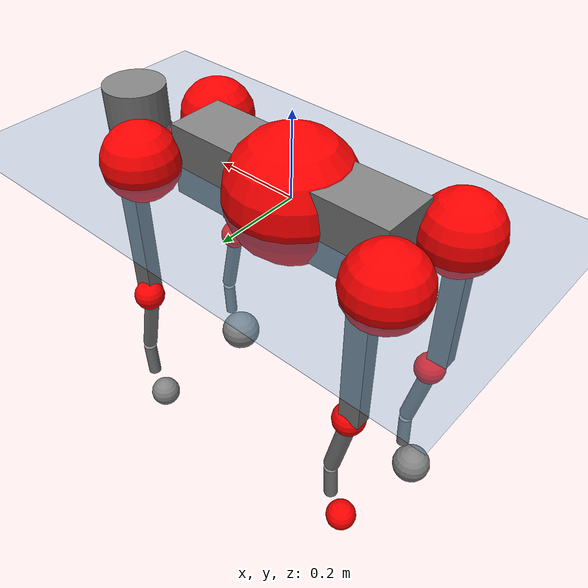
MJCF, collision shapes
<mujoco model="go2">
  <compiler angle="radian" assetdir="assets" balanceinertia="true" inertiafromgeom="false"/>

  <option timestep="0.005" density="1.2" viscosity="2e-05"/>

  <size nkey="1"/>

  <visual>
    <quality shadowsize="8192"/>
    <map shadowclip="0.5"/>
  </visual>

  <default>
    <default class="/">
      <geom contype="0" conaffinity="0" group="1" solref="-1000 -80"/>
      <site size="0.01 0.005 0.005" group="5"/>
      <general forcelimited="true" biastype="affine" gainprm="20" biasprm="0 -20 -0.5"/>
      <default class="go2">
        <joint armature="0.01" damping="0.01" frictionloss="0.2"/>
        <geom condim="1" margin="0.001"/>
        <default class="visual">
          <geom type="mesh" group="2"/>
        </default>
        <default class="collision">
          <geom group="3"/>
          <default class="foot">
            <geom size="0.022 0 0" condim="6" priority="1" friction="0.8 0.02 0.01" solimp="0.015 1 0.022"/>
          </default>
        </default>
        <default class="reward_collision_sphere">
          <geom group="5" rgba="1 0 0 1"/>
        </default>
      </default>
    </default>
  </default>

  <asset>
    <texture type="skybox" colorspace="auto" name="//unnamed_texture_0" builtin="gradient" rgb1="0.95 0.95 0.95" rgb2="0.95 0.95 0.95" width="100" height="600"/>
    <texture type="2d" colorspace="auto" name="texplane" builtin="checker" rgb1="0.345 0.575 0.748" rgb2="0.345 0.575 0.748" markrgb="1 1 1" width="512" height="512"/>
    <material name="MatPlane" class="/" texture="texplane" texuniform="true" texrepeat="2 2" specular="0.9"/>
    <material name="metal" class="/" rgba="0.9 0.95 0.95 1"/>
    <material name="black" class="/" rgba="0 0 0 1"/>
    <material name="white" class="/"/>
    <material name="gray" class="/" rgba="0.671705 0.692426 0.77427 1"/>
    <mesh name="base_0" class="/" file="base_0.obj"/>
    <mesh name="base_1" class="/" file="base_1.obj"/>
    <mesh name="base_2" class="/" file="base_2.obj"/>
    <mesh name="base_3" class="/" file="base_3.obj"/>
    <mesh name="base_4" class="/" file="base_4.obj"/>
    <mesh name="hip_0" class="/" file="hip_0.obj"/>
    <mesh name="hip_1" class="/" file="hip_1.obj"/>
    <mesh name="thigh_0" class="/" file="thigh_0.obj"/>
    <mesh name="thigh_1" class="/" file="thigh_1.obj"/>
    <mesh name="thigh_mirror_0" class="/" file="thigh_mirror_0.obj"/>
    <mesh name="thigh_mirror_1" class="/" file="thigh_mirror_1.obj"/>
    <mesh name="calf_0" class="/" file="calf_0.obj"/>
    <mesh name="calf_1" class="/" file="calf_1.obj"/>
    <mesh name="calf_mirror_0" class="/" file="calf_mirror_0.obj"/>
    <mesh name="calf_mirror_1" class="/" file="calf_mirror_1.obj"/>
    <mesh name="foot" class="/" file="foot.obj"/>
  </asset>

  <worldbody>
    <geom name="floor" class="/" size="100 100 0.125" type="plane" group="0" material="MatPlane"/>
    <light name="toplight_shadow" class="/" pos="0 0 5" dir="0.0990148 0.0990148 -0.990148" type="directional" ambient="0.04 0.04 0.04" diffuse="0.55 0.55 0.55" specular="0.12 0.12 0.12"/>
    <light name="toplight_fill" class="/" pos="0 0 5" dir="0.0990148 0.0990148 -0.990148" type="directional" castshadow="false" ambient="0.04 0.04 0.04" diffuse="0.3 0.3 0.3" specular="0.08 0.08 0.08"/>
    <body name="trunk" childclass="go2" pos="-0.00544886 0.00202238 0.0139418" quat="0.999996 0.000926024 0.00278631 0.000127839">
      <inertial pos="0.0511354 0.0167057 -0.0201158" quat="-0.0442475 0.698986 0.00025609 0.713765" mass="22.6251" diaginertia="1.0626 0.0857428 0.351422"/>
      <joint name="//unnamed_joint_0" type="free" armature="0" damping="0" frictionloss="0"/>
      <geom name="//unnamed_geom_1" class="visual" material="black" mesh="base_0"/>
      <geom name="//unnamed_geom_2" class="visual" material="black" mesh="base_1"/>
      <geom name="//unnamed_geom_3" class="visual" material="black" mesh="base_2"/>
      <geom name="//unnamed_geom_4" class="visual" material="white" mesh="base_3"/>
      <geom name="//unnamed_geom_5" class="visual" material="gray" mesh="base_4"/>
      <geom name="trunk_1" class="collision" size="0.281461 0.0699536 0.0852911" type="box"/>
      <geom name="trunk_2" class="collision" size="0.0748167 0.0673351" pos="0.487034 0 0.0176199" type="cylinder"/>
      <geom name="trunk_3" class="collision" size="0.0703277" pos="0.500705 0 -0.105719"/>
      <geom name="//unnamed_geom_9" class="reward_collision_sphere" size="0.149633"/>
      <geom name="//unnamed_geom_10" class="reward_collision_sphere" size="0.0897801" pos="0.478489 0 -0.0792895"/>
      <site name="imu" pos="0.0503179 0.0319413 -0.00850606" size="0.0149633"/>
      <camera name="track" pos="0 -2.03625 0" quat="0.707107 0.707107 0 0" mode="trackcom"/>
      <camera name="ego_camera" pos="0.533174 0 0.0792895" quat="-0.5 -0.5 0.5 0.5"/>
      <body name="FL_hip" pos="0.324156 0.0572658 0.00380109" quat="0.999984 -0.000483318 -0.00456578 -0.00335333">
        <inertial pos="-0.0260792 0.0134843 0.00468611" quat="0.444717 0.520648 0.503511 0.526905" mass="2.90687" diaginertia="0.0165556 0.000715178 0.00759185"/>
        <joint name="FL_hip_joint" pos="0 0 0" axis="0.997301 0.05355 0.0502292" stiffness="0.0439569" range="-0.946801 0.802763" armature="0.00142262" damping="0.0912696" frictionloss="0.405857"/>
        <geom name="//unnamed_geom_11" class="visual" material="metal" mesh="hip_0"/>
        <geom name="//unnamed_geom_12" class="visual" material="gray" mesh="hip_1"/>
        <geom name="//unnamed_geom_13" class="collision" size="0.0688314 0.0299267" pos="0 0.0814499 0" quat="0.707107 0.707107 0 0" type="cylinder"/>
        <geom name="//unnamed_geom_14" class="reward_collision_sphere" size="0.0897801" pos="0 0.0712687 0"/>
        <body name="FL_thigh" pos="0.00101328 0.102422 -0.000605801" quat="0.999997 -0.00141182 -0.00123785 0.0017494">
          <inertial pos="-0.0168911 -0.0224684 -0.0747603" quat="0.843774 0.0947817 0.0115148 0.528137" mass="3.03764" diaginertia="0.0988369 0.00597093 0.0152337"/>
          <joint name="FL_thigh_joint" pos="0 0 0" axis="-0.0565926 0.995724 -0.0730181" range="-1.40659 3.34649" armature="0.0101533" damping="0.0496708" frictionloss="0.547874"/>
          <geom name="//unnamed_geom_15" class="visual" material="metal" mesh="thigh_0"/>
          <geom name="//unnamed_geom_16" class="visual" material="gray" mesh="thigh_1"/>
          <geom name="//unnamed_geom_17" class="collision" size="0.15936 0.0183301 0.0254377" pos="0 0 -0.187652" quat="0.707107 0 0.707107 0" type="box"/>
          <body name="FL_calf" pos="-0.0154811 0.0158762 -0.356515" quat="0.99997 0.00167777 -0.00559952 -0.00506106">
            <inertial pos="0.0187626 0.000435622 -0.240989" quat="0.700499 -0.0275021 0.0219232 0.712786" mass="0.981318" diaginertia="0.0246949 0.001582 0.00113871"/>
            <joint name="FL_calf_joint" pos="0 0 0" axis="0.043811 0.998728 -0.0249499" stiffness="0.0193755" range="-2.45244 -1.04071" armature="0.0067509" damping="0.0835628" frictionloss="0.10271"/>
            <geom name="//unnamed_geom_18" class="visual" material="gray" mesh="calf_0"/>
            <geom name="//unnamed_geom_19" class="visual" material="black" mesh="calf_1"/>
            <geom name="FL_calf0" class="collision" size="0.017956 0.0897801" pos="0.0136711 0 -0.105719" quat="0.994493 0 -0.104807 0" type="cylinder"/>
            <geom name="//unnamed_geom_21" class="collision" size="0.0164597 0.0486309" pos="0.0341778 0 -0.260775" quat="0.999688 0 0.0249974 0" type="cylinder"/>
            <geom name="//unnamed_geom_22" class="visual" pos="0 0 -0.375304" quat="1 0 0 0" material="black" mesh="foot"/>
            <geom name="FL_foot" class="foot" size="0.039121" pos="-0.00341778 0 -0.375304"/>
            <geom name="//unnamed_geom_24" class="reward_collision_sphere" size="0.0374084"/>
            <geom name="//unnamed_geom_25" class="reward_collision_sphere" size="0.0374084" pos="-0.00341778 0 -0.375304"/>
            <site name="FL_foot" class="foot" pos="-0.00341778 0 -0.375304" size="0.0149633"/>
          </body>
        </body>
      </body>
      <body name="FR_hip" pos="0.343826 -0.0531911 0.00535659" quat="0.999999 0.000281177 -0.000894076 0.00140973">
        <inertial pos="-0.0257012 0.00381744 -0.00537157" quat="0.511995 0.500373 0.49079 0.496601" mass="2.09667" diaginertia="0.0122466 0.000461502 0.00668803"/>
        <joint name="FR_hip_joint" pos="0 0 0" axis="0.998789 -0.00748786 0.0486285" stiffness="0.0464495" range="-0.705998 0.912321" armature="0.026571" damping="0.0233726" frictionloss="0.549834"/>
        <geom name="//unnamed_geom_26" class="visual" pos="0 -6.48025e-09 -2.77951e-07" quat="4.63268e-05 1 0 0" material="metal" mesh="hip_0"/>
        <geom name="//unnamed_geom_27" class="visual" pos="0 -1.05053e-08 6.8748e-07" quat="4.63268e-05 1 0 0" material="gray" mesh="hip_1"/>
        <geom name="//unnamed_geom_28" class="collision" size="0.0688314 0.0299267" pos="0 -0.0814499 0" quat="0.707107 0.707107 0 0" type="cylinder"/>
        <geom name="//unnamed_geom_29" class="reward_collision_sphere" size="0.0897801" pos="0 -0.0712687 0"/>
        <body name="FR_thigh" pos="0.0108305 -0.114741 0.0115778" quat="0.999994 -0.00248428 -0.00184624 0.00183798">
          <inertial pos="-0.00641891 0.0161235 -0.0522536" quat="0.609582 -0.00401046 0.115687 0.784226" mass="5.59004" diaginertia="0.0957176 0.00633026 0.015232"/>
          <joint name="FR_thigh_joint" pos="0 0 0" axis="-0.0244974 -0.997166 -0.0711274" stiffness="0.00805115" range="-3.86283 1.30028" armature="0.015099" damping="0.0908469" frictionloss="0.00266473"/>
          <geom name="//unnamed_geom_30" class="visual" material="metal" mesh="thigh_mirror_0"/>
          <geom name="//unnamed_geom_31" class="visual" material="gray" mesh="thigh_mirror_1"/>
          <geom name="//unnamed_geom_32" class="collision" size="0.15936 0.0183301 0.0254377" pos="0 0 -0.187652" quat="0.707107 0 0.707107 0" type="box"/>
          <body name="FR_calf" pos="-0.0166042 0.017593 -0.385645" quat="0.999997 0.0019833 -0.000946557 0.0013534">
            <inertial pos="0.0134895 0.00531799 -0.26664" quat="0.663034 -0.00414881 -0.027958 0.748055" mass="0.894819" diaginertia="0.0273257 0.00195061 0.000868024"/>
            <joint name="FR_calf_joint" pos="0 0 0" axis="-0.0145983 -0.9997 -0.0196902" range="1.09068 2.45893" armature="0.0217998" damping="0" frictionloss="0.571226"/>
            <geom name="//unnamed_geom_33" class="visual" material="gray" mesh="calf_mirror_0"/>
            <geom name="//unnamed_geom_34" class="visual" material="black" mesh="calf_mirror_1"/>
            <geom name="FR_calf0" class="collision" size="0.0194523 0.0897801" pos="0.0170889 0 -0.105719" quat="0.995004 0 -0.0998334 0" type="cylinder"/>
            <geom name="//unnamed_geom_36" class="collision" size="0.0164597 0.0486309" pos="0.0341778 0 -0.260775" quat="0.999688 0 0.0249974 0" type="cylinder"/>
            <geom name="//unnamed_geom_37" class="visual" pos="0 0 -0.375304" quat="1 0 0 0" material="black" mesh="foot"/>
            <geom name="FR_foot" class="foot" size="0.0575305" pos="-0.00341778 0 -0.375304"/>
            <geom name="//unnamed_geom_39" class="reward_collision_sphere" size="0.0374084"/>
            <geom name="//unnamed_geom_40" class="reward_collision_sphere" size="0.0374084" pos="-0.00341778 0 -0.375304"/>
            <site name="FR_foot" class="foot" pos="-0.00341778 0 -0.375304" size="0.0149633"/>
          </body>
        </body>
      </body>
      <body name="RL_hip" pos="-0.311974 0.0366258 0.00141539" quat="0.99999 -0.000680546 0.00355327 -0.00244264">
        <inertial pos="-0.00176633 -0.0151487 -0.00485309" quat="0.477778 0.460221 0.52646 0.531756" mass="2.22823" diaginertia="0.0173275 0.000603781 0.0118225"/>
        <joint name="RL_hip_joint" pos="0 0 0" axis="-0.998825 0.0483654 0.00315292" stiffness="0.0479462" range="-1.24659 1.4435" armature="0.0284656" damping="0.0792011" frictionloss="0.364642"/>
        <geom name="//unnamed_geom_41" class="visual" pos="4.62586e-10 0 9.06776e-08" quat="4.63268e-05 0 1 0" material="metal" mesh="hip_0"/>
        <geom name="//unnamed_geom_42" class="visual" pos="7.49908e-10 0 8.04181e-08" quat="4.63268e-05 0 1 0" material="gray" mesh="hip_1"/>
        <geom name="//unnamed_geom_43" class="collision" size="0.0688314 0.0299267" pos="0 0.0814499 0" quat="0.707107 0.707107 0 0" type="cylinder"/>
        <geom name="//unnamed_geom_44" class="reward_collision_sphere" size="0.0897801" pos="0 0.0712687 0"/>
        <body name="RL_thigh" pos="0.0132589 0.116733 0.00822788" quat="1 0.000320802 -0.000105534 -0.000247288">
          <inertial pos="-0.00715091 -0.0382105 -0.0509135" quat="0.831125 0.109583 -0.0150419 0.544974" mass="3.81141" diaginertia="0.0873123 0.00732902 0.0131011"/>
          <joint name="RL_thigh_joint" pos="0 0 0" axis="0.0747927 0.996854 0.0262242" range="-0.590044 4.6521" armature="0.0237056" damping="0.0637617" frictionloss="0.154479"/>
          <geom name="//unnamed_geom_45" class="visual" material="metal" mesh="thigh_0"/>
          <geom name="//unnamed_geom_46" class="visual" material="gray" mesh="thigh_1"/>
          <geom name="//unnamed_geom_47" class="collision" size="0.15936 0.0183301 0.0254377" pos="0 0 -0.187652" quat="0.707107 0 0.707107 0" type="box"/>
          <body name="RL_calf" pos="0.013389 -0.00432855 -0.365275" quat="0.999987 0.00221347 -0.00162776 0.00435348">
            <inertial pos="0.0102534 -0.000620208 -0.245277" quat="0.694444 -0.0682835 -0.0711494 0.712757" mass="0.778016" diaginertia="0.0196633 0.00142802 0.00107689"/>
            <joint name="RL_calf_joint" pos="0 0 0" axis="-0.0730872 0.997325 0.00120866" range="-2.68689 -0.862808" armature="0.0253392" damping="0.0361926" frictionloss="0.0984621"/>
            <geom name="//unnamed_geom_48" class="visual" material="gray" mesh="calf_0"/>
            <geom name="//unnamed_geom_49" class="visual" material="black" mesh="calf_1"/>
            <geom name="RL_calf0" class="collision" size="0.0194523 0.0897801" pos="0.0170889 0 -0.105719" quat="0.995004 0 -0.0998334 0" type="cylinder"/>
            <geom name="//unnamed_geom_51" class="collision" size="0.0164597 0.0486309" pos="0.0341778 0 -0.260775" quat="0.999688 0 0.0249974 0" type="cylinder"/>
            <geom name="//unnamed_geom_52" class="visual" pos="0 0 -0.375304" quat="1 0 0 0" material="black" mesh="foot"/>
            <geom name="RL_foot" class="foot" size="0.0091968" pos="-0.00341778 0 -0.375304"/>
            <geom name="//unnamed_geom_54" class="reward_collision_sphere" size="0.0374084"/>
            <geom name="//unnamed_geom_55" class="reward_collision_sphere" size="0.0374084" pos="-0.00341778 0 -0.375304"/>
            <site name="RL_foot" class="foot" pos="-0.00341778 0 -0.375304" size="0.0149633"/>
          </body>
        </body>
      </body>
      <body name="RR_hip" pos="-0.335113 -0.0301489 0.0109401" quat="0.999972 -0.0005591 0.00183802 0.0072407">
        <inertial pos="0.0266231 0.00157944 -0.0164457" quat="0.509142 0.514825 0.506037 0.468675" mass="2.59998" diaginertia="0.0142249 0.00074609 0.0114559"/>
        <joint name="RR_hip_joint" pos="0 0 0" axis="-0.999846 0.0160597 0.00705919" stiffness="0.0572978" range="-0.729278 0.676389" armature="0.0177484" damping="0.0721099" frictionloss="0.2616"/>
        <geom name="//unnamed_geom_56" class="visual" pos="-4.86502e-10 -6.48025e-09 3.68629e-07" quat="2.14617e-09 4.63268e-05 4.63268e-05 -1" material="metal" mesh="hip_0"/>
        <geom name="//unnamed_geom_57" class="visual" pos="-6.90758e-10 -1.05053e-08 -6.07062e-07" quat="2.14617e-09 4.63268e-05 4.63268e-05 -1" material="gray" mesh="hip_1"/>
        <geom name="//unnamed_geom_58" class="collision" size="0.0688314 0.0299267" pos="0 -0.0814499 0" quat="0.707107 0.707107 0 0" type="cylinder"/>
        <geom name="//unnamed_geom_59" class="reward_collision_sphere" size="0.0897801" pos="0 -0.0712687 0"/>
        <body name="RR_thigh" pos="-0.0048237 -0.0858621 -0.0173395" quat="0.999996 -0.000814779 0.00203406 0.00149929">
          <inertial pos="-0.0205325 0.0304599 -0.0647124" quat="0.551842 -0.0198914 0.0845703 0.829411" mass="5.89307" diaginertia="0.129412 0.00752068 0.0167519"/>
          <joint name="RR_thigh_joint" pos="0 0 0" axis="-0.0673134 -0.996963 -0.0391672" stiffness="0.000205551" range="-4.63317 0.484662" armature="0.0226544" damping="0.06202" frictionloss="0.258598"/>
          <geom name="//unnamed_geom_60" class="visual" material="metal" mesh="thigh_mirror_0"/>
          <geom name="//unnamed_geom_61" class="visual" material="gray" mesh="thigh_mirror_1"/>
          <geom name="//unnamed_geom_62" class="collision" size="0.15936 0.0183301 0.0254377" pos="0 0 -0.187652" quat="0.707107 0 0.707107 0" type="box"/>
          <body name="RR_calf" pos="0.0170031 0.00772504 -0.382216" quat="0.999984 0.00382685 -0.00394007 -0.00157886">
            <inertial pos="0.0209706 0.00105895 -0.253988" quat="0.699111 0.0259065 -0.0719661 0.71091" mass="0.699217" diaginertia="0.0234186 0.00120303 0.000798213"/>
            <joint name="RR_calf_joint" pos="0 0 0" axis="0.00761778 -0.99997 -0.000997622" range="0.985566 2.90544" armature="0.0284811" damping="0" frictionloss="0.303024"/>
            <geom name="//unnamed_geom_63" class="visual" material="gray" mesh="calf_mirror_0"/>
            <geom name="//unnamed_geom_64" class="visual" material="black" mesh="calf_mirror_1"/>
            <geom name="RR_calf0" class="collision" size="0.0194523 0.0897801" pos="0.0170889 0 -0.105719" quat="0.995004 0 -0.0998334 0" type="cylinder"/>
            <geom name="//unnamed_geom_66" class="collision" size="0.0164597 0.0486309" pos="0.0341778 0 -0.260775" quat="0.999688 0 0.0249974 0" type="cylinder"/>
            <geom name="//unnamed_geom_67" class="visual" pos="0 0 -0.375304" quat="1 0 0 0" material="black" mesh="foot"/>
            <geom name="RR_foot" class="foot" size="0.0496847" pos="-0.00341778 0 -0.375304"/>
            <geom name="//unnamed_geom_69" class="reward_collision_sphere" size="0.0374084"/>
            <geom name="//unnamed_geom_70" class="reward_collision_sphere" size="0.0374084" pos="-0.00341778 0 -0.375304"/>
            <site name="RR_foot" class="foot" pos="-0.00341778 0 -0.375304" size="0.0149633"/>
          </body>
        </body>
      </body>
    </body>
  </worldbody>

  <contact>
    <pair class="/" geom1="floor" geom2="FL_foot" name="//unnamed_contact_0"/>
    <pair class="/" geom1="floor" geom2="FR_foot" name="//unnamed_contact_1"/>
    <pair class="/" geom1="floor" geom2="RL_foot" name="//unnamed_contact_2"/>
    <pair class="/" geom1="floor" geom2="RR_foot" name="//unnamed_contact_3"/>
  </contact>

  <actuator>
    <general name="FL_hip" class="/" joint="FL_hip_joint" forcerange="-44.5519 44.5519" gainprm="24.2425" biasprm="0 -24.2425 -0.894612"/>
    <general name="FL_thigh" class="/" joint="FL_thigh_joint" forcerange="-51.9735 51.9735" gainprm="24.2425" biasprm="0 -24.2425 -0.894612"/>
    <general name="FL_calf" class="/" joint="FL_calf_joint" forcerange="-89.0815 89.0815" gainprm="24.2425" biasprm="0 -24.2425 -0.894612"/>
    <general name="FR_hip" class="/" joint="FR_hip_joint" forcerange="-52.7466 52.7466" gainprm="24.2425" biasprm="0 -24.2425 -0.894612"/>
    <general name="FR_thigh" class="/" joint="FR_thigh_joint" forcerange="-20.7733 20.7733" gainprm="24.2425" biasprm="0 -24.2425 -0.894612"/>
    <general name="FR_calf" class="/" joint="FR_calf_joint" forcerange="-109.809 109.809" gainprm="24.2425" biasprm="0 -24.2425 -0.894612"/>
    <general name="RL_hip" class="/" joint="RL_hip_joint" forcerange="-35.663 35.663" gainprm="24.2425" biasprm="0 -24.2425 -0.894612"/>
    <general name="RL_thigh" class="/" joint="RL_thigh_joint" forcerange="-57.5684 57.5684" gainprm="24.2425" biasprm="0 -24.2425 -0.894612"/>
    <general name="RL_calf" class="/" joint="RL_calf_joint" forcerange="-88.2348 88.2348" gainprm="24.2425" biasprm="0 -24.2425 -0.894612"/>
    <general name="RR_hip" class="/" joint="RR_hip_joint" forcerange="-47.9149 47.9149" gainprm="24.2425" biasprm="0 -24.2425 -0.894612"/>
    <general name="RR_thigh" class="/" joint="RR_thigh_joint" forcerange="-59.4526 59.4526" gainprm="24.2425" biasprm="0 -24.2425 -0.894612"/>
    <general name="RR_calf" class="/" joint="RR_calf_joint" forcerange="-27.78 27.78" gainprm="24.2425" biasprm="0 -24.2425 -0.894612"/>
  </actuator>

  <sensor>
    <gyro site="imu" name="imu_angular_velocity"/>
    <velocimeter site="imu" name="imu_linear_velocity"/>
    <framelinvel objtype="site" objname="FL_foot" name="FL_foot_global_linear_velocity"/>
    <framelinvel objtype="site" objname="FR_foot" name="FR_foot_global_linear_velocity"/>
    <framelinvel objtype="site" objname="RL_foot" name="RL_foot_global_linear_velocity"/>
    <framelinvel objtype="site" objname="RR_foot" name="RR_foot_global_linear_velocity"/>
  </sensor>

  <keyframe>
    <key name="home" qpos="0 0 0.325 1 0 0 0 0.1 0.8 -1.5 -0.1 -0.8 1.5 -0.1 0.8 -1.5 0.1 -0.8 1.5"/>
  </keyframe>
</mujoco>
